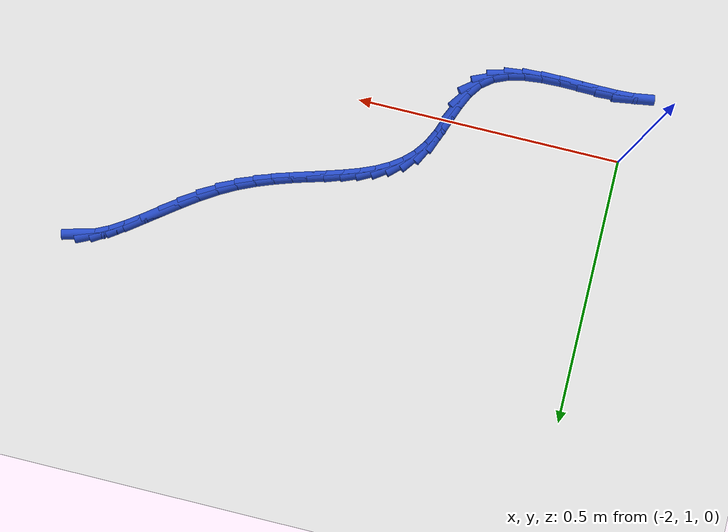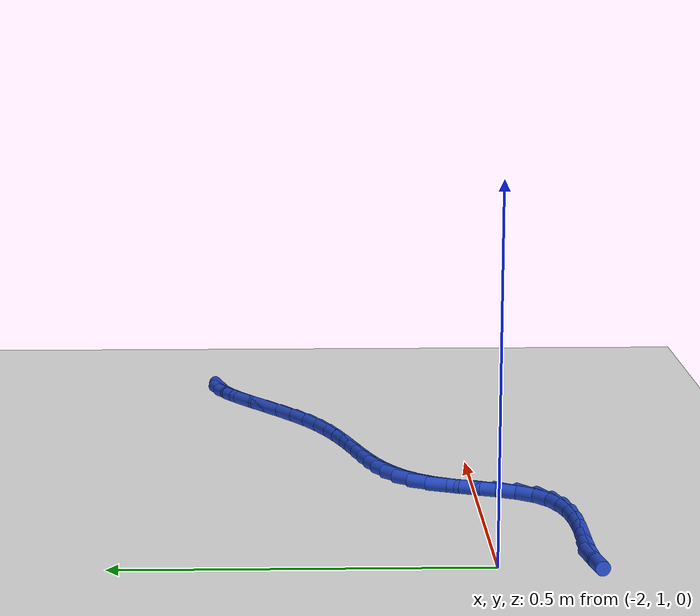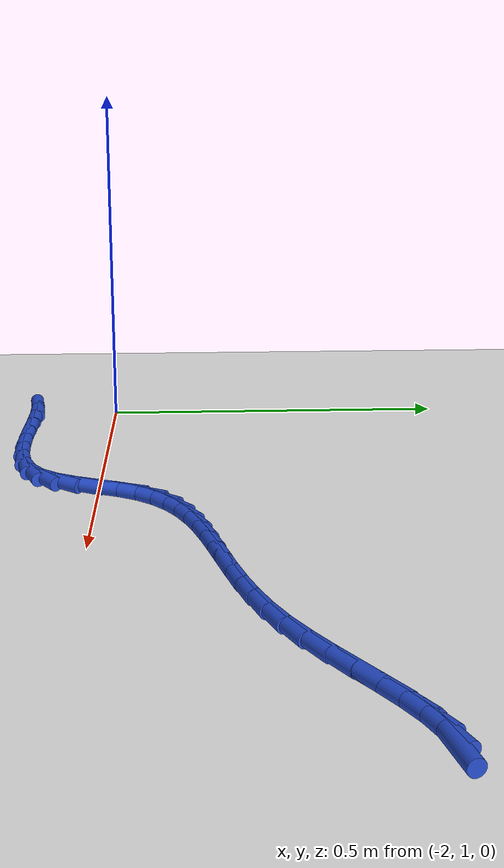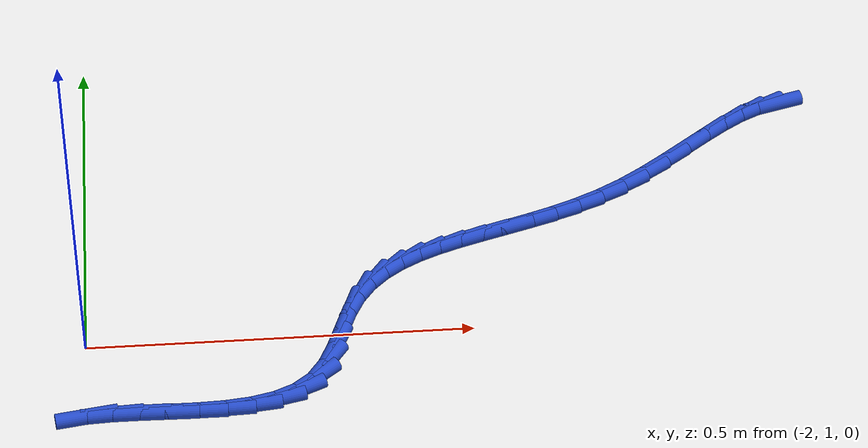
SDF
<sdf version="1.6">
 <world name="default">
  <model name="ground_plane">
   <static>1</static>
   <link name="link">
    <collision name="collision">
     <geometry><plane><normal>0 0 1</normal><size>100 100</size></plane></geometry>
     <surface><friction><ode><mu>100</mu><mu2>50</mu2></ode></friction></surface>
    </collision>
    <visual name="visual">
     <cast_shadows>0</cast_shadows>
     <geometry><plane><normal>0 0 1</normal><size>100 100</size></plane></geometry>
     <material>
      <script><uri>file://media/materials/scripts/gazebo.material</uri><name>Gazebo/WhiteGlow</name></script>
     </material>
    </visual>
   </link>
  </model>
  <model name="line">
   <link name="link_73">
    <pose>-1.0635194224466509 1.3701226941919893 0.01 0 1.57 0.26088683718025485</pose>
    <collision name="collision">
     <geometry><cylinder><radius>0.01</radius><length>0.08</length></cylinder></geometry>
    </collision>
    <visual name="visual">
     <material>
      <script><name>Gazebo/Blue</name><uri>file://media/materials/scripts/gazebo.material</uri></script>
     </material>
     <geometry><cylinder><radius>0.01</radius><length>0.08</length></cylinder></geometry>
    </visual>
   </link>
   <link name="link_74">
    <pose>-1.086260300576472 1.3640515309743524 0.01 0 1.57 0.44965654378894504</pose>
    <collision name="collision">
     <geometry><cylinder><radius>0.01</radius><length>0.08</length></cylinder></geometry>
    </collision>
    <visual name="visual">
     <material>
      <script><name>Gazebo/Blue</name><uri>file://media/materials/scripts/gazebo.material</uri></script>
     </material>
     <geometry><cylinder><radius>0.01</radius><length>0.08</length></cylinder></geometry>
    </visual>
   </link>
   <link name="link_75">
    <pose>-1.1107724459546222 1.3522211965795166 0.01 0 1.57 0.5591597089260998</pose>
    <collision name="collision">
     <geometry><cylinder><radius>0.01</radius><length>0.08</length></cylinder></geometry>
    </collision>
    <visual name="visual">
     <material>
      <script><name>Gazebo/Blue</name><uri>file://media/materials/scripts/gazebo.material</uri></script>
     </material>
     <geometry><cylinder><radius>0.01</radius><length>0.08</length></cylinder></geometry>
    </visual>
   </link>
   <link name="link_76">
    <pose>-1.1368912248071987 1.3358765983685055 0.01 0 1.57 0.6185099055657508</pose>
    <collision name="collision">
     <geometry><cylinder><radius>0.01</radius><length>0.08</length></cylinder></geometry>
    </collision>
    <visual name="visual">
     <material>
      <script><name>Gazebo/Blue</name><uri>file://media/materials/scripts/gazebo.material</uri></script>
     </material>
     <geometry><cylinder><radius>0.01</radius><length>0.08</length></cylinder></geometry>
    </visual>
   </link>
   <link name="link_77">
    <pose>-1.1644520033602992 1.316262643702343 0.01 0 1.57 0.6437184609977504</pose>
    <collision name="collision">
     <geometry><cylinder><radius>0.01</radius><length>0.08</length></cylinder></geometry>
    </collision>
    <visual name="visual">
     <material>
      <script><name>Gazebo/Blue</name><uri>file://media/materials/scripts/gazebo.material</uri></script>
     </material>
     <geometry><cylinder><radius>0.01</radius><length>0.08</length></cylinder></geometry>
    </visual>
   </link>
   <link name="link_78">
    <pose>-1.1932901478400209 1.2946242399420533 0.01 0 1.57 0.642534304365859</pose>
    <collision name="collision">
     <geometry><cylinder><radius>0.01</radius><length>0.08</length></cylinder></geometry>
    </collision>
    <visual name="visual">
     <material>
      <script><name>Gazebo/Blue</name><uri>file://media/materials/scripts/gazebo.material</uri></script>
     </material>
     <geometry><cylinder><radius>0.01</radius><length>0.08</length></cylinder></geometry>
    </visual>
   </link>
   <link name="link_79">
    <pose>-1.2232410244724614 1.2722062944486607 0.01 0 1.57 0.6177136794814649</pose>
    <collision name="collision">
     <geometry><cylinder><radius>0.01</radius><length>0.08</length></cylinder></geometry>
    </collision>
    <visual name="visual">
     <material>
      <script><name>Gazebo/Blue</name><uri>file://media/materials/scripts/gazebo.material</uri></script>
     </material>
     <geometry><cylinder><radius>0.01</radius><length>0.08</length></cylinder></geometry>
    </visual>
   </link>
   <link name="link_80">
    <pose>-1.2541399994837183 1.2502537145831891 0.01 0 1.57 0.5685413186029408</pose>
    <collision name="collision">
     <geometry><cylinder><radius>0.01</radius><length>0.08</length></cylinder></geometry>
    </collision>
    <visual name="visual">
     <material>
      <script><name>Gazebo/Blue</name><uri>file://media/materials/scripts/gazebo.material</uri></script>
     </material>
     <geometry><cylinder><radius>0.01</radius><length>0.08</length></cylinder></geometry>
    </visual>
   </link>
   <link name="link_81">
    <pose>-1.2858224390998887 1.2300114077066628 0.01 0 1.57 0.49469715784250584</pose>
    <collision name="collision">
     <geometry><cylinder><radius>0.01</radius><length>0.08</length></cylinder></geometry>
    </collision>
    <visual name="visual">
     <material>
      <script><name>Gazebo/Blue</name><uri>file://media/materials/scripts/gazebo.material</uri></script>
     </material>
     <geometry><cylinder><radius>0.01</radius><length>0.08</length></cylinder></geometry>
    </visual>
   </link>
   <link name="link_82">
    <pose>-1.3181137801269582 1.212592268144459 0.01 0 1.57 0.4208073558974105</pose>
    <collision name="collision">
     <geometry><cylinder><radius>0.01</radius><length>0.08</length></cylinder></geometry>
    </collision>
    <visual name="visual">
     <material>
      <script><name>Gazebo/Blue</name><uri>file://media/materials/scripts/gazebo.material</uri></script>
     </material>
     <geometry><cylinder><radius>0.01</radius><length>0.08</length></cylinder></geometry>
    </visual>
   </link>
   <link name="link_83">
    <pose>-1.3507548315065803 1.197984050874085 0.01 0 1.57 0.3620019216211056</pose>
    <collision name="collision">
     <geometry><cylinder><radius>0.01</radius><length>0.08</length></cylinder></geometry>
    </collision>
    <visual name="visual">
     <material>
      <script><name>Gazebo/Blue</name><uri>file://media/materials/scripts/gazebo.material</uri></script>
     </material>
     <geometry><cylinder><radius>0.01</radius><length>0.08</length></cylinder></geometry>
    </visual>
   </link>
   <link name="link_84">
    <pose>-1.3834435771098041 1.185605145541716 0.01 0 1.57 0.3196472979774152</pose>
    <collision name="collision">
     <geometry><cylinder><radius>0.01</radius><length>0.08</length></cylinder></geometry>
    </collision>
    <visual name="visual">
     <material>
      <script><name>Gazebo/Blue</name><uri>file://media/materials/scripts/gazebo.material</uri></script>
     </material>
     <geometry><cylinder><radius>0.01</radius><length>0.08</length></cylinder></geometry>
    </visual>
   </link>
   <link name="link_85">
    <pose>-1.4158776686422627 1.17486952560765 0.01 0 1.57 0.2947699607814255</pose>
    <collision name="collision">
     <geometry><cylinder><radius>0.01</radius><length>0.08</length></cylinder></geometry>
    </collision>
    <visual name="visual">
     <material>
      <script><name>Gazebo/Blue</name><uri>file://media/materials/scripts/gazebo.material</uri></script>
     </material>
     <geometry><cylinder><radius>0.01</radius><length>0.08</length></cylinder></geometry>
    </visual>
   </link>
   <link name="link_86">
    <pose>-1.447754757809589 1.1651911645321853 0.01 0 1.57 0.2885499597719304</pose>
    <collision name="collision">
     <geometry><cylinder><radius>0.01</radius><length>0.08</length></cylinder></geometry>
    </collision>
    <visual name="visual">
     <material>
      <script><name>Gazebo/Blue</name><uri>file://media/materials/scripts/gazebo.material</uri></script>
     </material>
     <geometry><cylinder><radius>0.01</radius><length>0.08</length></cylinder></geometry>
    </visual>
   </link>
   <link name="link_87">
    <pose>-1.4787724963174167 1.155984035775621 0.01 0 1.57 0.302638008586667</pose>
    <collision name="collision">
     <geometry><cylinder><radius>0.01</radius><length>0.08</length></cylinder></geometry>
    </collision>
    <visual name="visual">
     <material>
      <script><name>Gazebo/Blue</name><uri>file://media/materials/scripts/gazebo.material</uri></script>
     </material>
     <geometry><cylinder><radius>0.01</radius><length>0.08</length></cylinder></geometry>
    </visual>
   </link>
   <link name="link_88">
    <pose>-1.5086285358713776 1.1466621127982555 0.01 0 1.57 0.33935652323841187</pose>
    <collision name="collision">
     <geometry><cylinder><radius>0.01</radius><length>0.08</length></cylinder></geometry>
    </collision>
    <visual name="visual">
     <material>
      <script><name>Gazebo/Blue</name><uri>file://media/materials/scripts/gazebo.material</uri></script>
     </material>
     <geometry><cylinder><radius>0.01</radius><length>0.08</length></cylinder></geometry>
    </visual>
   </link>
   <link name="link_89">
    <pose>-1.5370205281771048 1.1366393690603873 0.01 0 1.57 0.40167061080339866</pose>
    <collision name="collision">
     <geometry><cylinder><radius>0.01</radius><length>0.08</length></cylinder></geometry>
    </collision>
    <visual name="visual">
     <material>
      <script><name>Gazebo/Blue</name><uri>file://media/materials/scripts/gazebo.material</uri></script>
     </material>
     <geometry><cylinder><radius>0.01</radius><length>0.08</length></cylinder></geometry>
    </visual>
   </link>
   <link name="link_90">
    <pose>-1.5636461249402316 1.1253297780223155 0.01 0 1.57 0.49266334729772365</pose>
    <collision name="collision">
     <geometry><cylinder><radius>0.01</radius><length>0.08</length></cylinder></geometry>
    </collision>
    <visual name="visual">
     <material>
      <script><name>Gazebo/Blue</name><uri>file://media/materials/scripts/gazebo.material</uri></script>
     </material>
     <geometry><cylinder><radius>0.01</radius><length>0.08</length></cylinder></geometry>
    </visual>
   </link>
   <link name="link_91">
    <pose>-1.5882029778663906 1.1121473131443376 0.01 0 1.57 0.6140859533701142</pose>
    <collision name="collision">
     <geometry><cylinder><radius>0.01</radius><length>0.08</length></cylinder></geometry>
    </collision>
    <visual name="visual">
     <material>
      <script><name>Gazebo/Blue</name><uri>file://media/materials/scripts/gazebo.material</uri></script>
     </material>
     <geometry><cylinder><radius>0.01</radius><length>0.08</length></cylinder></geometry>
    </visual>
   </link>
   <link name="link_92">
    <pose>-1.6103887386612157 1.0965059478867534 0.01 0 1.57 0.7637769730691065</pose>
    <collision name="collision">
     <geometry><cylinder><radius>0.01</radius><length>0.08</length></cylinder></geometry>
    </collision>
    <visual name="visual">
     <material>
      <script><name>Gazebo/Blue</name><uri>file://media/materials/scripts/gazebo.material</uri></script>
     </material>
     <geometry><cylinder><radius>0.01</radius><length>0.08</length></cylinder></geometry>
    </visual>
   </link>
   <link name="link_93">
    <pose>-1.6299010590303387 1.077819655709861 0.01 0 1.57 0.9330959778457643</pose>
    <collision name="collision">
     <geometry><cylinder><radius>0.01</radius><length>0.08</length></cylinder></geometry>
    </collision>
    <visual name="visual">
     <material>
      <script><name>Gazebo/Blue</name><uri>file://media/materials/scripts/gazebo.material</uri></script>
     </material>
     <geometry><cylinder><radius>0.01</radius><length>0.08</length></cylinder></geometry>
    </visual>
   </link>
   <link name="link_94">
    <pose>-1.6464375906793935 1.0555024100739592 0.01 0 1.57 1.1027752003371798</pose>
    <collision name="collision">
     <geometry><cylinder><radius>0.01</radius><length>0.08</length></cylinder></geometry>
    </collision>
    <visual name="visual">
     <material>
      <script><name>Gazebo/Blue</name><uri>file://media/materials/scripts/gazebo.material</uri></script>
     </material>
     <geometry><cylinder><radius>0.01</radius><length>0.08</length></cylinder></geometry>
    </visual>
   </link>
   <link name="link_95">
    <pose>-1.6597888221965138 1.0290893764564335 0.01 0 1.57 1.2050167526171165</pose>
    <collision name="collision">
     <geometry><cylinder><radius>0.01</radius><length>0.08</length></cylinder></geometry>
    </collision>
    <visual name="visual">
     <material>
      <script><name>Gazebo/Blue</name><uri>file://media/materials/scripts/gazebo.material</uri></script>
     </material>
     <geometry><cylinder><radius>0.01</radius><length>0.08</length></cylinder></geometry>
    </visual>
   </link>
   <link name="link_96">
    <pose>-1.6710165604644969 0.9997753369045163 0.01 0 1.57 1.214781321855936</pose>
    <collision name="collision">
     <geometry><cylinder><radius>0.01</radius><length>0.08</length></cylinder></geometry>
    </collision>
    <visual name="visual">
     <material>
      <script><name>Gazebo/Blue</name><uri>file://media/materials/scripts/gazebo.material</uri></script>
     </material>
     <geometry><cylinder><radius>0.01</radius><length>0.08</length></cylinder></geometry>
    </visual>
   </link>
   <link name="link_97">
    <pose>-1.6821043242086318 0.9699583034140961 0.01 0 1.57 1.136106455976479</pose>
    <collision name="collision">
     <geometry><cylinder><radius>0.01</radius><length>0.08</length></cylinder></geometry>
    </collision>
    <visual name="visual">
     <material>
      <script><name>Gazebo/Blue</name><uri>file://media/materials/scripts/gazebo.material</uri></script>
     </material>
     <geometry><cylinder><radius>0.01</radius><length>0.08</length></cylinder></geometry>
    </visual>
   </link>
   <link name="link_98">
    <pose>-1.6950562732015726 0.9420632334158704 0.01 0 1.57 0.9505419141874999</pose>
    <collision name="collision">
     <geometry><cylinder><radius>0.01</radius><length>0.08</length></cylinder></geometry>
    </collision>
    <visual name="visual">
     <material>
      <script><name>Gazebo/Blue</name><uri>file://media/materials/scripts/gazebo.material</uri></script>
     </material>
     <geometry><cylinder><radius>0.01</radius><length>0.08</length></cylinder></geometry>
    </visual>
   </link>
   <link name="link_99">
    <pose>-1.7118765604519288 0.9185150765507119 0.01 0 1.57 0.6657236948130707</pose>
    <collision name="collision">
     <geometry><cylinder><radius>0.01</radius><length>0.08</length></cylinder></geometry>
    </collision>
    <visual name="visual">
     <material>
      <script><name>Gazebo/Blue</name><uri>file://media/materials/scripts/gazebo.material</uri></script>
     </material>
     <geometry><cylinder><radius>0.01</radius><length>0.08</length></cylinder></geometry>
    </visual>
   </link>
   <link name="link_100">
    <pose>-1.7340299725576416 0.9011176202146824 0.01 0 1.57 0.41145460866975936</pose>
    <collision name="collision">
     <geometry><cylinder><radius>0.01</radius><length>0.08</length></cylinder></geometry>
    </collision>
    <visual name="visual">
     <material>
      <script><name>Gazebo/Blue</name><uri>file://media/materials/scripts/gazebo.material</uri></script>
     </material>
     <geometry><cylinder><radius>0.01</radius><length>0.08</length></cylinder></geometry>
    </visual>
   </link>
   <link name="link_101">
    <pose>-1.7609723205685868 0.8893610116947842 0.01 0 1.57 0.22911782594003072</pose>
    <collision name="collision">
     <geometry><cylinder><radius>0.01</radius><length>0.08</length></cylinder></geometry>
    </collision>
    <visual name="visual">
     <material>
      <script><name>Gazebo/Blue</name><uri>file://media/materials/scripts/gazebo.material</uri></script>
     </material>
     <geometry><cylinder><radius>0.01</radius><length>0.08</length></cylinder></geometry>
    </visual>
   </link>
   <link name="link_102">
    <pose>-1.791691771963888 0.8821968357638637 0.01 0 1.57 0.10769543803876262</pose>
    <collision name="collision">
     <geometry><cylinder><radius>0.01</radius><length>0.08</length></cylinder></geometry>
    </collision>
    <visual name="visual">
     <material>
      <script><name>Gazebo/Blue</name><uri>file://media/materials/scripts/gazebo.material</uri></script>
     </material>
     <geometry><cylinder><radius>0.01</radius><length>0.08</length></cylinder></geometry>
    </visual>
   </link>
   <link name="link_103">
    <pose>-1.8251764942226694 0.8785766771947676 0.01 0 1.57 0.03190220157372043</pose>
    <collision name="collision">
     <geometry><cylinder><radius>0.01</radius><length>0.08</length></cylinder></geometry>
    </collision>
    <visual name="visual">
     <material>
      <script><name>Gazebo/Blue</name><uri>file://media/materials/scripts/gazebo.material</uri></script>
     </material>
     <geometry><cylinder><radius>0.01</radius><length>0.08</length></cylinder></geometry>
    </visual>
   </link>
   <link name="link_104">
    <pose>-1.8604146548240543 0.8774521207603426 0.01 0 1.57 -0.008966757106273572</pose>
    <collision name="collision">
     <geometry><cylinder><radius>0.01</radius><length>0.08</length></cylinder></geometry>
    </collision>
    <visual name="visual">
     <material>
      <script><name>Gazebo/Blue</name><uri>file://media/materials/scripts/gazebo.material</uri></script>
     </material>
     <geometry><cylinder><radius>0.01</radius><length>0.08</length></cylinder></geometry>
    </visual>
   </link>
   <link name="link_105">
    <pose>-1.896394421247166 0.8777747512334361 0.01 0 1.57 -0.02019919729717127</pose>
    <collision name="collision">
     <geometry><cylinder><radius>0.01</radius><length>0.08</length></cylinder></geometry>
    </collision>
    <visual name="visual">
     <material>
      <script><name>Gazebo/Blue</name><uri>file://media/materials/scripts/gazebo.material</uri></script>
     </material>
     <geometry><cylinder><radius>0.01</radius><length>0.08</length></cylinder></geometry>
    </visual>
   </link>
   <link name="link_106">
    <pose>-1.9321039609711272 0.8784961533868939 0.01 0 1.57 -0.0020843379097613473</pose>
    <collision name="collision">
     <geometry><cylinder><radius>0.01</radius><length>0.08</length></cylinder></geometry>
    </collision>
    <visual name="visual">
     <material>
      <script><name>Gazebo/Blue</name><uri>file://media/materials/scripts/gazebo.material</uri></script>
     </material>
     <geometry><cylinder><radius>0.01</radius><length>0.08</length></cylinder></geometry>
    </visual>
   </link>
   <link name="link_107">
    <pose>-1.9665314414750623 0.8785679119935634 0.01 0 1.57 0.0505674531580191</pose>
    <collision name="collision">
     <geometry><cylinder><radius>0.01</radius><length>0.08</length></cylinder></geometry>
    </collision>
    <visual name="visual">
     <material>
      <script><name>Gazebo/Blue</name><uri>file://media/materials/scripts/gazebo.material</uri></script>
     </material>
     <geometry><cylinder><radius>0.01</radius><length>0.08</length></cylinder></geometry>
    </visual>
   </link>
   <link name="link_108">
    <pose>-1.9986650302380944 0.8769416118262913 0.01 0 1.57 0.15053812325537413</pose>
    <collision name="collision">
     <geometry><cylinder><radius>0.01</radius><length>0.08</length></cylinder></geometry>
    </collision>
    <visual name="visual">
     <material>
      <script><name>Gazebo/Blue</name><uri>file://media/materials/scripts/gazebo.material</uri></script>
     </material>
     <geometry><cylinder><radius>0.01</radius><length>0.08</length></cylinder></geometry>
    </visual>
   </link>
  </model>
 </world>
</sdf>
